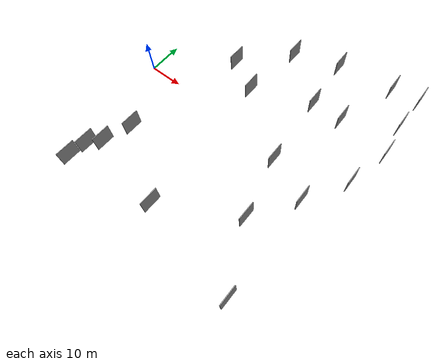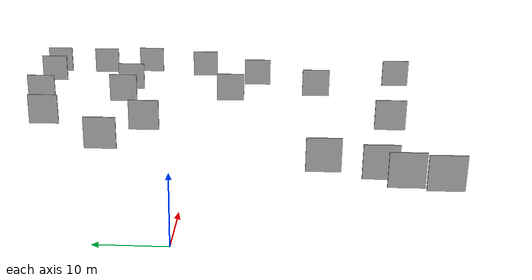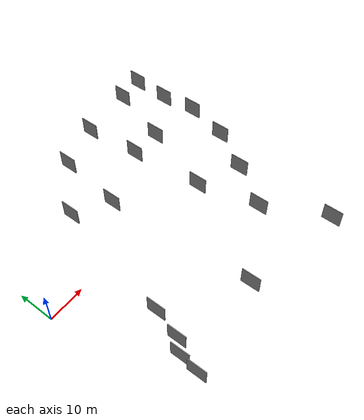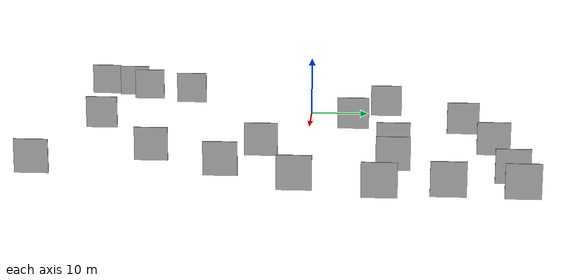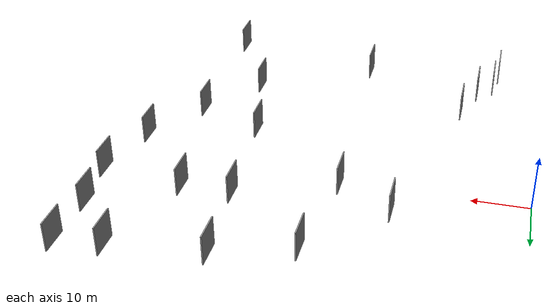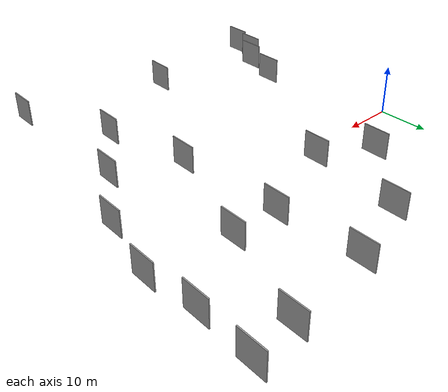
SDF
<sdf version="1.6">
 <world name="default">
  <scene>
   <sky><clouds><speed>12</speed></clouds></sky>
   <ambient>0.4 0.4 0.4 1</ambient>
   <background>0.7 0.7 0.7 1</background>
   <shadows>1</shadows>
  </scene>
  <gravity>0 0 -9.8066</gravity>
  <magnetic_field>6e-06 2.3e-05 -4.2e-05</magnetic_field>
  <physics default="0" name="default_physics" type="ode">
   <ode>
    <solver>
     <type>quick</type>
     <iters>10</iters>
     <sor>1.0</sor>
     <use_dynamic_moi_rescaling>0</use_dynamic_moi_rescaling>
    </solver>
    <constraints>
     <cfm>0</cfm>
     <erp>0.2</erp>
     <contact_max_correcting_vel>100</contact_max_correcting_vel>
     <contact_surface_layer>0.001</contact_surface_layer>
    </constraints>
   </ode>
   <max_step_size>0.004</max_step_size>
   <real_time_factor>1</real_time_factor>
   <real_time_update_rate>250</real_time_update_rate>
  </physics>
  <light name="sun" type="directional">
   <pose>0 0 10 0 0 0</pose>
   <diffuse>0.8 0.8 0.8 1</diffuse>
   <specular>0.2 0.2 0.2 1</specular>
   <attenuation>
    <range>1000</range>
    <constant>0.9</constant>
    <linear>0.01</linear>
    <quadratic>0.001</quadratic>
   </attenuation>
   <direction>-0.5 0.1 -0.9</direction>
  </light>
  <model name="grey_wall_1">
   <static>1</static>
   <pose>60.2426 -37.7055 5.0 0.000000 0.000000 1.570796</pose>
   <link name="link">
    <pose>0 0 2.50 0 0 0</pose>
    <collision name="collision"><geometry><box><size>5.00 0.2 5.00</size></box></geometry></collision>
    <visual name="visual">
     <cast_shadows>0</cast_shadows>
     <geometry><box><size>5.00 0.2 5.00</size></box></geometry>
     <material>
      <script>
       <uri>model://grey_wall/materials/scripts</uri>
       <uri>model://grey_wall/materials/textures</uri>
       <name>vrc/grey_wall</name>
      </script>
     </material>
    </visual>
   </link>
  </model>
  <model name="grey_wall_2">
   <static>1</static>
   <pose>52.1863 -21.4854 5.0 0.000000 0.000000 1.570796</pose>
   <link name="link">
    <pose>0 0 2.50 0 0 0</pose>
    <collision name="collision"><geometry><box><size>5.00 0.2 5.00</size></box></geometry></collision>
    <visual name="visual">
     <cast_shadows>0</cast_shadows>
     <geometry><box><size>5.00 0.2 5.00</size></box></geometry>
     <material>
      <script>
       <uri>model://grey_wall/materials/scripts</uri>
       <uri>model://grey_wall/materials/textures</uri>
       <name>vrc/grey_wall</name>
      </script>
     </material>
    </visual>
   </link>
  </model>
  <model name="grey_wall_3">
   <static>1</static>
   <pose>55.3209 14.2574 5.0 0.000000 0.000000 1.570796</pose>
   <link name="link">
    <pose>0 0 2.50 0 0 0</pose>
    <collision name="collision"><geometry><box><size>5.00 0.2 5.00</size></box></geometry></collision>
    <visual name="visual">
     <cast_shadows>0</cast_shadows>
     <geometry><box><size>5.00 0.2 5.00</size></box></geometry>
     <material>
      <script>
       <uri>model://grey_wall/materials/scripts</uri>
       <uri>model://grey_wall/materials/textures</uri>
       <name>vrc/grey_wall</name>
      </script>
     </material>
    </visual>
   </link>
  </model>
  <model name="grey_wall_4">
   <static>1</static>
   <pose>13.8937 -19.9973 5.0 0.000000 0.000000 1.570796</pose>
   <link name="link">
    <pose>0 0 2.50 0 0 0</pose>
    <collision name="collision"><geometry><box><size>5.00 0.2 5.00</size></box></geometry></collision>
    <visual name="visual">
     <cast_shadows>0</cast_shadows>
     <geometry><box><size>5.00 0.2 5.00</size></box></geometry>
     <material>
      <script>
       <uri>model://grey_wall/materials/scripts</uri>
       <uri>model://grey_wall/materials/textures</uri>
       <name>vrc/grey_wall</name>
      </script>
     </material>
    </visual>
   </link>
  </model>
  <model name="grey_wall_5">
   <static>1</static>
   <pose>68.3502 21.7502 5.0 0.000000 0.000000 1.570796</pose>
   <link name="link">
    <pose>0 0 2.50 0 0 0</pose>
    <collision name="collision"><geometry><box><size>5.00 0.2 5.00</size></box></geometry></collision>
    <visual name="visual">
     <cast_shadows>0</cast_shadows>
     <geometry><box><size>5.00 0.2 5.00</size></box></geometry>
     <material>
      <script>
       <uri>model://grey_wall/materials/scripts</uri>
       <uri>model://grey_wall/materials/textures</uri>
       <name>vrc/grey_wall</name>
      </script>
     </material>
    </visual>
   </link>
  </model>
  <model name="grey_wall_6">
   <static>1</static>
   <pose>59.8071 -10.4282 5.0 0.000000 0.000000 1.570796</pose>
   <link name="link">
    <pose>0 0 2.50 0 0 0</pose>
    <collision name="collision"><geometry><box><size>5.00 0.2 5.00</size></box></geometry></collision>
    <visual name="visual">
     <cast_shadows>0</cast_shadows>
     <geometry><box><size>5.00 0.2 5.00</size></box></geometry>
     <material>
      <script>
       <uri>model://grey_wall/materials/scripts</uri>
       <uri>model://grey_wall/materials/textures</uri>
       <name>vrc/grey_wall</name>
      </script>
     </material>
    </visual>
   </link>
  </model>
  <model name="grey_wall_7">
   <static>1</static>
   <pose>48.3433 -5.4660 5.0 0.000000 0.000000 1.570796</pose>
   <link name="link">
    <pose>0 0 2.50 0 0 0</pose>
    <collision name="collision"><geometry><box><size>5.00 0.2 5.00</size></box></geometry></collision>
    <visual name="visual">
     <cast_shadows>0</cast_shadows>
     <geometry><box><size>5.00 0.2 5.00</size></box></geometry>
     <material>
      <script>
       <uri>model://grey_wall/materials/scripts</uri>
       <uri>model://grey_wall/materials/textures</uri>
       <name>vrc/grey_wall</name>
      </script>
     </material>
    </visual>
   </link>
  </model>
  <model name="grey_wall_8">
   <static>1</static>
   <pose>46.8142 14.3289 5.0 0.000000 0.000000 1.570796</pose>
   <link name="link">
    <pose>0 0 2.50 0 0 0</pose>
    <collision name="collision"><geometry><box><size>5.00 0.2 5.00</size></box></geometry></collision>
    <visual name="visual">
     <cast_shadows>0</cast_shadows>
     <geometry><box><size>5.00 0.2 5.00</size></box></geometry>
     <material>
      <script>
       <uri>model://grey_wall/materials/scripts</uri>
       <uri>model://grey_wall/materials/textures</uri>
       <name>vrc/grey_wall</name>
      </script>
     </material>
    </visual>
   </link>
  </model>
  <model name="grey_wall_9">
   <static>1</static>
   <pose>66.4817 0.5158 5.0 0.000000 0.000000 1.570796</pose>
   <link name="link">
    <pose>0 0 2.50 0 0 0</pose>
    <collision name="collision"><geometry><box><size>5.00 0.2 5.00</size></box></geometry></collision>
    <visual name="visual">
     <cast_shadows>0</cast_shadows>
     <geometry><box><size>5.00 0.2 5.00</size></box></geometry>
     <material>
      <script>
       <uri>model://grey_wall/materials/scripts</uri>
       <uri>model://grey_wall/materials/textures</uri>
       <name>vrc/grey_wall</name>
      </script>
     </material>
    </visual>
   </link>
  </model>
  <model name="grey_wall_10">
   <static>1</static>
   <pose>32.6975 -32.2863 5.0 0.000000 0.000000 1.570796</pose>
   <link name="link">
    <pose>0 0 2.50 0 0 0</pose>
    <collision name="collision"><geometry><box><size>5.00 0.2 5.00</size></box></geometry></collision>
    <visual name="visual">
     <cast_shadows>0</cast_shadows>
     <geometry><box><size>5.00 0.2 5.00</size></box></geometry>
     <material>
      <script>
       <uri>model://grey_wall/materials/scripts</uri>
       <uri>model://grey_wall/materials/textures</uri>
       <name>vrc/grey_wall</name>
      </script>
     </material>
    </visual>
   </link>
  </model>
  <model name="grey_wall_11">
   <static>1</static>
   <pose>33.0068 25.3615 5.0 0.000000 0.000000 1.570796</pose>
   <link name="link">
    <pose>0 0 2.50 0 0 0</pose>
    <collision name="collision"><geometry><box><size>5.00 0.2 5.00</size></box></geometry></collision>
    <visual name="visual">
     <cast_shadows>0</cast_shadows>
     <geometry><box><size>5.00 0.2 5.00</size></box></geometry>
     <material>
      <script>
       <uri>model://grey_wall/materials/scripts</uri>
       <uri>model://grey_wall/materials/textures</uri>
       <name>vrc/grey_wall</name>
      </script>
     </material>
    </visual>
   </link>
  </model>
  <model name="grey_wall_12">
   <static>1</static>
   <pose>30.6661 8.0008 5.0 0.000000 0.000000 1.570796</pose>
   <link name="link">
    <pose>0 0 2.50 0 0 0</pose>
    <collision name="collision"><geometry><box><size>5.00 0.2 5.00</size></box></geometry></collision>
    <visual name="visual">
     <cast_shadows>0</cast_shadows>
     <geometry><box><size>5.00 0.2 5.00</size></box></geometry>
     <material>
      <script>
       <uri>model://grey_wall/materials/scripts</uri>
       <uri>model://grey_wall/materials/textures</uri>
       <name>vrc/grey_wall</name>
      </script>
     </material>
    </visual>
   </link>
  </model>
  <model name="grey_wall_13">
   <static>1</static>
   <pose>8.8074 -30.6146 5.0 0.000000 0.000000 1.570796</pose>
   <link name="link">
    <pose>0 0 2.50 0 0 0</pose>
    <collision name="collision"><geometry><box><size>5.00 0.2 5.00</size></box></geometry></collision>
    <visual name="visual">
     <cast_shadows>0</cast_shadows>
     <geometry><box><size>5.00 0.2 5.00</size></box></geometry>
     <material>
      <script>
       <uri>model://grey_wall/materials/scripts</uri>
       <uri>model://grey_wall/materials/textures</uri>
       <name>vrc/grey_wall</name>
      </script>
     </material>
    </visual>
   </link>
  </model>
  <model name="grey_wall_14">
   <static>1</static>
   <pose>69.4288 12.3104 5.0 0.000000 0.000000 1.570796</pose>
   <link name="link">
    <pose>0 0 2.50 0 0 0</pose>
    <collision name="collision"><geometry><box><size>5.00 0.2 5.00</size></box></geometry></collision>
    <visual name="visual">
     <cast_shadows>0</cast_shadows>
     <geometry><box><size>5.00 0.2 5.00</size></box></geometry>
     <material>
      <script>
       <uri>model://grey_wall/materials/scripts</uri>
       <uri>model://grey_wall/materials/textures</uri>
       <name>vrc/grey_wall</name>
      </script>
     </material>
    </visual>
   </link>
  </model>
  <model name="grey_wall_15">
   <static>1</static>
   <pose>45.6239 29.3323 5.0 0.000000 0.000000 1.570796</pose>
   <link name="link">
    <pose>0 0 2.50 0 0 0</pose>
    <collision name="collision"><geometry><box><size>5.00 0.2 5.00</size></box></geometry></collision>
    <visual name="visual">
     <cast_shadows>0</cast_shadows>
     <geometry><box><size>5.00 0.2 5.00</size></box></geometry>
     <material>
      <script>
       <uri>model://grey_wall/materials/scripts</uri>
       <uri>model://grey_wall/materials/textures</uri>
       <name>vrc/grey_wall</name>
      </script>
     </material>
    </visual>
   </link>
  </model>
  <model name="grey_wall_16">
   <static>1</static>
   <pose>21.5036 13.2785 5.0 0.000000 0.000000 1.570796</pose>
   <link name="link">
    <pose>0 0 2.50 0 0 0</pose>
    <collision name="collision"><geometry><box><size>5.00 0.2 5.00</size></box></geometry></collision>
    <visual name="visual">
     <cast_shadows>0</cast_shadows>
     <geometry><box><size>5.00 0.2 5.00</size></box></geometry>
     <material>
      <script>
       <uri>model://grey_wall/materials/scripts</uri>
       <uri>model://grey_wall/materials/textures</uri>
       <name>vrc/grey_wall</name>
      </script>
     </material>
    </visual>
   </link>
  </model>
  <model name="grey_wall_17">
   <static>1</static>
   <pose>8.0036 -35.6105 5.0 0.000000 0.000000 1.570796</pose>
   <link name="link">
    <pose>0 0 2.50 0 0 0</pose>
    <collision name="collision"><geometry><box><size>5.00 0.2 5.00</size></box></geometry></collision>
    <visual name="visual">
     <cast_shadows>0</cast_shadows>
     <geometry><box><size>5.00 0.2 5.00</size></box></geometry>
     <material>
      <script>
       <uri>model://grey_wall/materials/scripts</uri>
       <uri>model://grey_wall/materials/textures</uri>
       <name>vrc/grey_wall</name>
      </script>
     </material>
    </visual>
   </link>
  </model>
  <model name="grey_wall_18">
   <static>1</static>
   <pose>61.0865 31.0455 5.0 0.000000 0.000000 1.570796</pose>
   <link name="link">
    <pose>0 0 2.50 0 0 0</pose>
    <collision name="collision"><geometry><box><size>5.00 0.2 5.00</size></box></geometry></collision>
    <visual name="visual">
     <cast_shadows>0</cast_shadows>
     <geometry><box><size>5.00 0.2 5.00</size></box></geometry>
     <material>
      <script>
       <uri>model://grey_wall/materials/scripts</uri>
       <uri>model://grey_wall/materials/textures</uri>
       <name>vrc/grey_wall</name>
      </script>
     </material>
    </visual>
   </link>
  </model>
  <model name="grey_wall_19">
   <static>1</static>
   <pose>68.7527 31.8563 5.0 0.000000 0.000000 1.570796</pose>
   <link name="link">
    <pose>0 0 2.50 0 0 0</pose>
    <collision name="collision"><geometry><box><size>5.00 0.2 5.00</size></box></geometry></collision>
    <visual name="visual">
     <cast_shadows>0</cast_shadows>
     <geometry><box><size>5.00 0.2 5.00</size></box></geometry>
     <material>
      <script>
       <uri>model://grey_wall/materials/scripts</uri>
       <uri>model://grey_wall/materials/textures</uri>
       <name>vrc/grey_wall</name>
      </script>
     </material>
    </visual>
   </link>
  </model>
  <model name="grey_wall_20">
   <static>1</static>
   <pose>11.5629 -27.5949 5.0 0.000000 0.000000 1.570796</pose>
   <link name="link">
    <pose>0 0 2.50 0 0 0</pose>
    <collision name="collision"><geometry><box><size>5.00 0.2 5.00</size></box></geometry></collision>
    <visual name="visual">
     <cast_shadows>0</cast_shadows>
     <geometry><box><size>5.00 0.2 5.00</size></box></geometry>
     <material>
      <script>
       <uri>model://grey_wall/materials/scripts</uri>
       <uri>model://grey_wall/materials/textures</uri>
       <name>vrc/grey_wall</name>
      </script>
     </material>
    </visual>
   </link>
  </model>
 </world>
</sdf>
